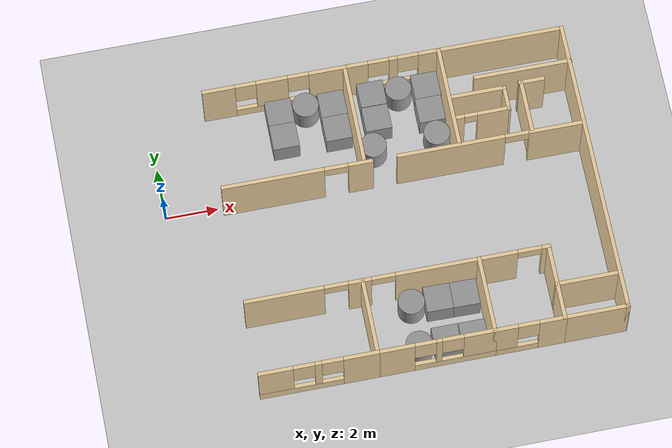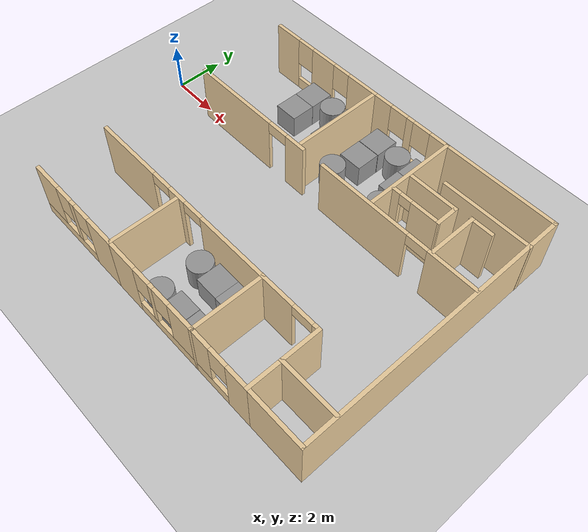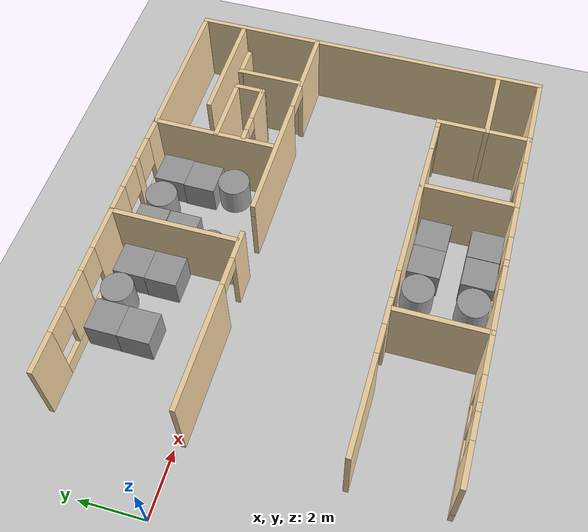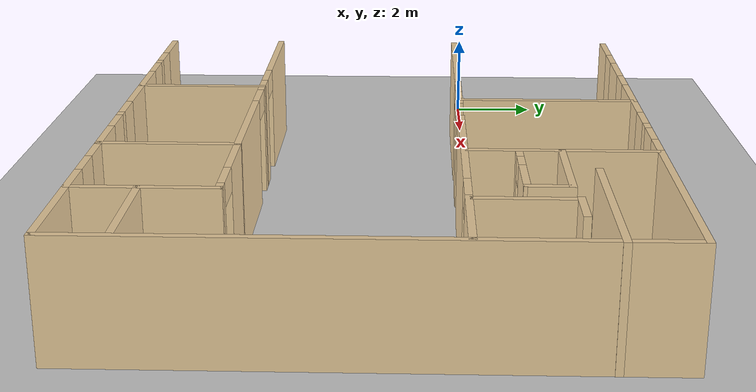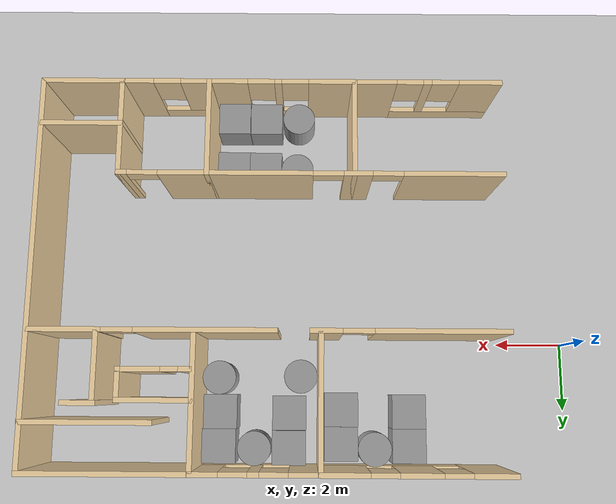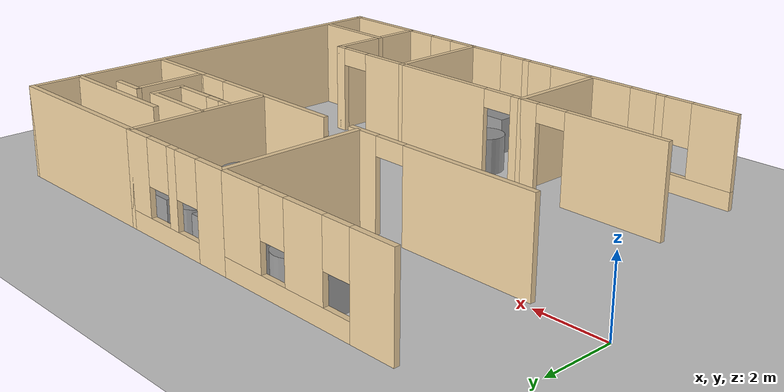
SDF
<sdf version="1.7">
 <world name="default">
  <model name="ground_plane">
   <static>1</static>
   <link name="link">
    <collision name="collision">
     <geometry><plane><normal>0 0 1</normal><size>100 100</size></plane></geometry>
     <surface>
      <contact><collide_bitmask>65535</collide_bitmask></contact>
      <friction><ode><mu>100</mu><mu2>50</mu2></ode></friction>
     </surface>
    </collision>
    <visual name="visual">
     <cast_shadows>0</cast_shadows>
     <geometry><plane><normal>0 0 1</normal><size>100 100</size></plane></geometry>
     <material>
      <script><uri>file://media/materials/scripts/gazebo.material</uri><name>Gazebo/Grey</name></script>
     </material>
    </visual>
   </link>
  </model>
  <model name="Health_2">
   <pose>1.45683 -1.97013 0 0 -0 0</pose>
   <link name="Wall_145">
    <collision name="Wall_145_Collision">
     <geometry><box><size>3 0.15 2.5</size></box></geometry>
     <pose>0 0 1.25 0 -0 0</pose>
    </collision>
    <visual name="Wall_145_Visual">
     <pose>0 0 1.25 0 -0 0</pose>
     <geometry><box><size>3 0.15 2.5</size></box></geometry>
     <material>
      <script><uri>file://media/materials/scripts/gazebo.material</uri><name>Gazebo/Grey</name></script>
      <ambient>0.921569 0.807843 0.615686 1</ambient>
     </material>
     <meta><layer>0</layer></meta>
    </visual>
    <pose>9.48077 -4.275 0 0 -0 -1.5708</pose>
   </link>
   <link name="Wall_164">
    <pose>3.43264 5.7 0 0 -0 0</pose>
    <visual name="Wall_164_Visual_0">
     <pose>-2.12455 0 1.25 0 -0 0</pose>
     <geometry><box><size>1.25091 0.15 2.5</size></box></geometry>
     <material>
      <script><uri>file://media/materials/scripts/gazebo.material</uri><name>Gazebo/Grey</name></script>
      <ambient>0.921569 0.807843 0.615686 1</ambient>
     </material>
     <meta><layer>0</layer></meta>
    </visual>
    <collision name="Wall_164_Collision_0">
     <geometry><box><size>1.25091 0.15 2.5</size></box></geometry>
     <pose>-2.12455 0 1.25 0 -0 0</pose>
    </collision>
    <visual name="Wall_164_Visual_1">
     <pose>0.625454 0 0.25 0 -0 0</pose>
     <geometry><box><size>4.24909 0.15 0.5</size></box></geometry>
     <material>
      <script><uri>file://media/materials/scripts/gazebo.material</uri><name>Gazebo/Grey</name></script>
      <ambient>0.921569 0.807843 0.615686 1</ambient>
     </material>
     <meta><layer>0</layer></meta>
    </visual>
    <collision name="Wall_164_Collision_1">
     <geometry><box><size>4.24909 0.15 0.5</size></box></geometry>
     <pose>0.625454 0 0.25 0 -0 0</pose>
    </collision>
    <visual name="Wall_164_Visual_2">
     <pose>-0.096496 0 1.5 0 -0 0</pose>
     <geometry><box><size>1.20519 0.15 2</size></box></geometry>
     <material>
      <script><uri>file://media/materials/scripts/gazebo.material</uri><name>Gazebo/Grey</name></script>
      <ambient>0.921569 0.807843 0.615686 1</ambient>
     </material>
     <meta><layer>0</layer></meta>
    </visual>
    <collision name="Wall_164_Collision_2">
     <geometry><box><size>1.20519 0.15 2</size></box></geometry>
     <pose>-0.096496 0 1.5 0 -0 0</pose>
    </collision>
    <visual name="Wall_164_Visual_3">
     <pose>2.02805 0 1.5 0 -0 0</pose>
     <geometry><box><size>1.4439 0.15 2</size></box></geometry>
     <material>
      <script><uri>file://media/materials/scripts/gazebo.material</uri><name>Gazebo/Grey</name></script>
      <ambient>0.921569 0.807843 0.615686 1</ambient>
     </material>
     <meta><layer>0</layer></meta>
    </visual>
    <collision name="Wall_164_Collision_3">
     <geometry><box><size>1.4439 0.15 2</size></box></geometry>
     <pose>2.02805 0 1.5 0 -0 0</pose>
    </collision>
    <visual name="Wall_164_Visual_4">
     <pose>-1.09909 0 1.9 0 -0 0</pose>
     <geometry><box><size>0.8 0.15 1.2</size></box></geometry>
     <material>
      <script><uri>file://media/materials/scripts/gazebo.material</uri><name>Gazebo/Grey</name></script>
      <ambient>0.921569 0.807843 0.615686 1</ambient>
     </material>
     <meta><layer>0</layer></meta>
    </visual>
    <collision name="Wall_164_Collision_4">
     <geometry><box><size>0.8 0.15 1.2</size></box></geometry>
     <pose>-1.09909 0 1.9 0 -0 0</pose>
    </collision>
    <visual name="Wall_164_Visual_5">
     <pose>0.906098 0 1.9 0 -0 0</pose>
     <geometry><box><size>0.8 0.15 1.2</size></box></geometry>
     <material>
      <script><uri>file://media/materials/scripts/gazebo.material</uri><name>Gazebo/Grey</name></script>
      <ambient>0.921569 0.807843 0.615686 1</ambient>
     </material>
     <meta><layer>0</layer></meta>
    </visual>
    <collision name="Wall_164_Collision_5">
     <geometry><box><size>0.8 0.15 1.2</size></box></geometry>
     <pose>0.906098 0 1.9 0 -0 0</pose>
    </collision>
   </link>
   <link name="Wall_165">
    <collision name="Wall_165_Collision">
     <geometry><box><size>4 0.15 2.5</size></box></geometry>
     <pose>0 0 1.25 0 -0 0</pose>
    </collision>
    <visual name="Wall_165_Visual">
     <pose>0 0 1.25 0 -0 0</pose>
     <geometry><box><size>4 0.15 2.5</size></box></geometry>
     <material>
      <script><uri>file://media/materials/scripts/gazebo.material</uri><name>Gazebo/Grey</name></script>
      <ambient>0.921569 0.807843 0.615686 1</ambient>
     </material>
     <meta><layer>0</layer></meta>
    </visual>
    <pose>6.10764 3.775 0 0 -0 -1.5708</pose>
   </link>
   <link name="Wall_190">
    <pose>7.90764 5.7 0 0 -0 0</pose>
    <visual name="Wall_190_Visual_0">
     <pose>-1.39167 0 1.25 0 -0 0</pose>
     <geometry><box><size>0.966652 0.15 2.5</size></box></geometry>
     <material>
      <script><uri>file://media/materials/scripts/gazebo.material</uri><name>Gazebo/Grey</name></script>
      <ambient>0.921569 0.807843 0.615686 1</ambient>
     </material>
     <meta><layer>0</layer></meta>
    </visual>
    <collision name="Wall_190_Collision_0">
     <geometry><box><size>0.966652 0.15 2.5</size></box></geometry>
     <pose>-1.39167 0 1.25 0 -0 0</pose>
    </collision>
    <visual name="Wall_190_Visual_1">
     <pose>0.483326 0 0.25 0 -0 0</pose>
     <geometry><box><size>2.78335 0.15 0.5</size></box></geometry>
     <material>
      <script><uri>file://media/materials/scripts/gazebo.material</uri><name>Gazebo/Grey</name></script>
      <ambient>0.921569 0.807843 0.615686 1</ambient>
     </material>
     <meta><layer>0</layer></meta>
    </visual>
    <collision name="Wall_190_Collision_1">
     <geometry><box><size>2.78335 0.15 0.5</size></box></geometry>
     <pose>0.483326 0 0.25 0 -0 0</pose>
    </collision>
    <visual name="Wall_190_Visual_2">
     <pose>0.054512 0 1.5 0 -0 0</pose>
     <geometry><box><size>0.32572 0.15 2</size></box></geometry>
     <material>
      <script><uri>file://media/materials/scripts/gazebo.material</uri><name>Gazebo/Grey</name></script>
      <ambient>0.921569 0.807843 0.615686 1</ambient>
     </material>
     <meta><layer>0</layer></meta>
    </visual>
    <collision name="Wall_190_Collision_2">
     <geometry><box><size>0.32572 0.15 2</size></box></geometry>
     <pose>0.054512 0 1.5 0 -0 0</pose>
    </collision>
    <visual name="Wall_190_Visual_3">
     <pose>1.44619 0 1.5 0 -0 0</pose>
     <geometry><box><size>0.857628 0.15 2</size></box></geometry>
     <material>
      <script><uri>file://media/materials/scripts/gazebo.material</uri><name>Gazebo/Grey</name></script>
      <ambient>0.921569 0.807843 0.615686 1</ambient>
     </material>
     <meta><layer>0</layer></meta>
    </visual>
    <collision name="Wall_190_Collision_3">
     <geometry><box><size>0.857628 0.15 2</size></box></geometry>
     <pose>1.44619 0 1.5 0 -0 0</pose>
    </collision>
    <visual name="Wall_190_Visual_4">
     <pose>-0.508348 0 1.9 0 -0 0</pose>
     <geometry><box><size>0.8 0.15 1.2</size></box></geometry>
     <material>
      <script><uri>file://media/materials/scripts/gazebo.material</uri><name>Gazebo/Grey</name></script>
      <ambient>0.921569 0.807843 0.615686 1</ambient>
     </material>
     <meta><layer>0</layer></meta>
    </visual>
    <collision name="Wall_190_Collision_4">
     <geometry><box><size>0.8 0.15 1.2</size></box></geometry>
     <pose>-0.508348 0 1.9 0 -0 0</pose>
    </collision>
    <visual name="Wall_190_Visual_5">
     <pose>0.617372 0 1.9 0 -0 0</pose>
     <geometry><box><size>0.8 0.15 1.2</size></box></geometry>
     <material>
      <script><uri>file://media/materials/scripts/gazebo.material</uri><name>Gazebo/Grey</name></script>
      <ambient>0.921569 0.807843 0.615686 1</ambient>
     </material>
     <meta><layer>0</layer></meta>
    </visual>
    <collision name="Wall_190_Collision_5">
     <geometry><box><size>0.8 0.15 1.2</size></box></geometry>
     <pose>0.617372 0 1.9 0 -0 0</pose>
    </collision>
   </link>
   <link name="Wall_191">
    <collision name="Wall_191_Collision">
     <geometry><box><size>4 0.15 2.5</size></box></geometry>
     <pose>0 0 1.25 0 -0 0</pose>
    </collision>
    <visual name="Wall_191_Visual">
     <pose>0 0 1.25 0 -0 0</pose>
     <geometry><box><size>4 0.15 2.5</size></box></geometry>
     <material>
      <script><uri>file://media/materials/scripts/gazebo.material</uri><name>Gazebo/Grey</name></script>
      <ambient>0.921569 0.807843 0.615686 1</ambient>
     </material>
     <meta><layer>0</layer></meta>
    </visual>
    <pose>9.70764 3.775 0 0 -0 -1.5708</pose>
   </link>
   <link name="Wall_203">
    <collision name="Wall_203_Collision">
     <geometry><box><size>11.55 0.15 2.5</size></box></geometry>
     <pose>0 0 1.25 0 -0 0</pose>
    </collision>
    <visual name="Wall_203_Visual">
     <pose>0 0 1.25 0 -0 0</pose>
     <geometry><box><size>11.55 0.15 2.5</size></box></geometry>
     <material>
      <script><uri>file://media/materials/scripts/gazebo.material</uri><name>Gazebo/Grey</name></script>
      <ambient>0.921569 0.807843 0.615686 1</ambient>
     </material>
     <meta><layer>0</layer></meta>
    </visual>
    <pose>14.4308 -0 0 0 -0 1.5708</pose>
   </link>
   <link name="Wall_206">
    <collision name="Wall_206_Collision">
     <geometry><box><size>4.87313 0.15 2.5</size></box></geometry>
     <pose>0 0 1.25 0 -0 0</pose>
    </collision>
    <visual name="Wall_206_Visual">
     <pose>0 0 1.25 0 -0 0</pose>
     <geometry><box><size>4.87313 0.15 2.5</size></box></geometry>
     <material>
      <script><uri>file://media/materials/scripts/gazebo.material</uri><name>Gazebo/Grey</name></script>
      <ambient>0.921569 0.807843 0.615686 1</ambient>
     </material>
     <meta><layer>0</layer></meta>
    </visual>
    <pose>12.0692 5.7 0 0 -0 0</pose>
   </link>
   <link name="Wall_222">
    <collision name="Wall_222_Collision">
     <geometry><box><size>2.5 0.15 2.5</size></box></geometry>
     <pose>0 0 1.25 0 -0 0</pose>
    </collision>
    <visual name="Wall_222_Visual">
     <pose>0 0 1.25 0 -0 0</pose>
     <geometry><box><size>2.5 0.15 2.5</size></box></geometry>
     <material>
      <script><uri>file://media/materials/scripts/gazebo.material</uri><name>Gazebo/Grey</name></script>
      <ambient>0.921569 0.807843 0.615686 1</ambient>
     </material>
     <meta><layer>0</layer></meta>
    </visual>
    <pose>13.2531 -4.36608 0 0 -0 0</pose>
   </link>
   <link name="Wall_230">
    <pose>6.43077 -2.85 0 0 -0 0</pose>
    <visual name="Wall_230_Visual_0">
     <pose>-4.22798 0 1.25 0 -0 0</pose>
     <geometry><box><size>2.99403 0.15 2.5</size></box></geometry>
     <material>
      <script><uri>file://media/materials/scripts/gazebo.material</uri><name>Gazebo/Grey</name></script>
      <ambient>0.921569 0.807843 0.615686 1</ambient>
     </material>
     <meta><layer>0</layer></meta>
    </visual>
    <collision name="Wall_230_Collision_0">
     <geometry><box><size>2.99403 0.15 2.5</size></box></geometry>
     <pose>-4.22798 0 1.25 0 -0 0</pose>
    </collision>
    <visual name="Wall_230_Visual_1">
     <pose>-1.40349 0 1.25 0 -0 0</pose>
     <geometry><box><size>0.854958 0.15 2.5</size></box></geometry>
     <material>
      <script><uri>file://media/materials/scripts/gazebo.material</uri><name>Gazebo/Grey</name></script>
      <ambient>0.921569 0.807843 0.615686 1</ambient>
     </material>
     <meta><layer>0</layer></meta>
    </visual>
    <collision name="Wall_230_Collision_1">
     <geometry><box><size>0.854958 0.15 2.5</size></box></geometry>
     <pose>-1.40349 0 1.25 0 -0 0</pose>
    </collision>
    <visual name="Wall_230_Visual_2">
     <pose>2.20944 0 1.25 0 -0 0</pose>
     <geometry><box><size>4.57089 0.15 2.5</size></box></geometry>
     <material>
      <script><uri>file://media/materials/scripts/gazebo.material</uri><name>Gazebo/Grey</name></script>
      <ambient>0.921569 0.807843 0.615686 1</ambient>
     </material>
     <meta><layer>0</layer></meta>
    </visual>
    <collision name="Wall_230_Collision_2">
     <geometry><box><size>4.57089 0.15 2.5</size></box></geometry>
     <pose>2.20944 0 1.25 0 -0 0</pose>
    </collision>
    <visual name="Wall_230_Visual_3">
     <pose>5.55994 0 1.25 0 -0 0</pose>
     <geometry><box><size>0.330116 0.15 2.5</size></box></geometry>
     <material>
      <script><uri>file://media/materials/scripts/gazebo.material</uri><name>Gazebo/Grey</name></script>
      <ambient>0.921569 0.807843 0.615686 1</ambient>
     </material>
     <meta><layer>0</layer></meta>
    </visual>
    <collision name="Wall_230_Collision_3">
     <geometry><box><size>0.330116 0.15 2.5</size></box></geometry>
     <pose>5.55994 0 1.25 0 -0 0</pose>
    </collision>
    <visual name="Wall_230_Visual_4">
     <pose>-2.28097 0 2.25 0 -0 0</pose>
     <geometry><box><size>0.9 0.15 0.5</size></box></geometry>
     <material>
      <script><uri>file://media/materials/scripts/gazebo.material</uri><name>Gazebo/Grey</name></script>
      <ambient>0.921569 0.807843 0.615686 1</ambient>
     </material>
     <meta><layer>0</layer></meta>
    </visual>
    <collision name="Wall_230_Collision_4">
     <geometry><box><size>0.9 0.15 0.5</size></box></geometry>
     <pose>-2.28097 0 2.25 0 -0 0</pose>
    </collision>
    <visual name="Wall_230_Visual_5">
     <pose>-0.526008 0 2.25 0 -0 0</pose>
     <geometry><box><size>0.9 0.15 0.5</size></box></geometry>
     <material>
      <script><uri>file://media/materials/scripts/gazebo.material</uri><name>Gazebo/Grey</name></script>
      <ambient>0.921569 0.807843 0.615686 1</ambient>
     </material>
     <meta><layer>0</layer></meta>
    </visual>
    <collision name="Wall_230_Collision_5">
     <geometry><box><size>0.9 0.15 0.5</size></box></geometry>
     <pose>-0.526008 0 2.25 0 -0 0</pose>
    </collision>
    <visual name="Wall_230_Visual_6">
     <pose>4.94488 0 2.25 0 -0 0</pose>
     <geometry><box><size>0.9 0.15 0.5</size></box></geometry>
     <material>
      <script><uri>file://media/materials/scripts/gazebo.material</uri><name>Gazebo/Grey</name></script>
      <ambient>0.921569 0.807843 0.615686 1</ambient>
     </material>
     <meta><layer>0</layer></meta>
    </visual>
    <collision name="Wall_230_Collision_6">
     <geometry><box><size>0.9 0.15 0.5</size></box></geometry>
     <pose>4.94488 0 2.25 0 -0 0</pose>
    </collision>
   </link>
   <link name="Wall_247">
    <pose>7.57961 1.75857 0 0 -0 3.14159</pose>
    <visual name="Wall_247_Visual_0">
     <pose>-5.81258 0 1.25 0 -0 0</pose>
     <geometry><box><size>2.12484 0.15 2.5</size></box></geometry>
     <material>
      <script><uri>file://media/materials/scripts/gazebo.material</uri><name>Gazebo/Grey</name></script>
      <ambient>0.921569 0.807843 0.615686 1</ambient>
     </material>
     <meta><layer>0</layer></meta>
    </visual>
    <collision name="Wall_247_Collision_0">
     <geometry><box><size>2.12484 0.15 2.5</size></box></geometry>
     <pose>-5.81258 0 1.25 0 -0 0</pose>
    </collision>
    <visual name="Wall_247_Visual_1">
     <pose>-1.79974 0 1.25 0 -0 0</pose>
     <geometry><box><size>4.10084 0.15 2.5</size></box></geometry>
     <material>
      <script><uri>file://media/materials/scripts/gazebo.material</uri><name>Gazebo/Grey</name></script>
      <ambient>0.921569 0.807843 0.615686 1</ambient>
     </material>
     <meta><layer>0</layer></meta>
    </visual>
    <collision name="Wall_247_Collision_1">
     <geometry><box><size>4.10084 0.15 2.5</size></box></geometry>
     <pose>-1.79974 0 1.25 0 -0 0</pose>
    </collision>
    <visual name="Wall_247_Visual_2">
     <pose>1.62183 0 1.25 0 -0 0</pose>
     <geometry><box><size>0.942288 0.15 2.5</size></box></geometry>
     <material>
      <script><uri>file://media/materials/scripts/gazebo.material</uri><name>Gazebo/Grey</name></script>
      <ambient>0.921569 0.807843 0.615686 1</ambient>
     </material>
     <meta><layer>0</layer></meta>
    </visual>
    <collision name="Wall_247_Collision_2">
     <geometry><box><size>0.942288 0.15 2.5</size></box></geometry>
     <pose>1.62183 0 1.25 0 -0 0</pose>
    </collision>
    <visual name="Wall_247_Visual_3">
     <pose>4.93398 0 1.25 0 -0 0</pose>
     <geometry><box><size>3.88203 0.15 2.5</size></box></geometry>
     <material>
      <script><uri>file://media/materials/scripts/gazebo.material</uri><name>Gazebo/Grey</name></script>
      <ambient>0.921569 0.807843 0.615686 1</ambient>
     </material>
     <meta><layer>0</layer></meta>
    </visual>
    <collision name="Wall_247_Collision_3">
     <geometry><box><size>3.88203 0.15 2.5</size></box></geometry>
     <pose>4.93398 0 1.25 0 -0 0</pose>
    </collision>
    <visual name="Wall_247_Visual_4">
     <pose>-4.30016 0 2.25 0 -0 0</pose>
     <geometry><box><size>0.9 0.15 0.5</size></box></geometry>
     <material>
      <script><uri>file://media/materials/scripts/gazebo.material</uri><name>Gazebo/Grey</name></script>
      <ambient>0.921569 0.807843 0.615686 1</ambient>
     </material>
     <meta><layer>0</layer></meta>
    </visual>
    <collision name="Wall_247_Collision_4">
     <geometry><box><size>0.9 0.15 0.5</size></box></geometry>
     <pose>-4.30016 0 2.25 0 -0 0</pose>
    </collision>
    <visual name="Wall_247_Visual_5">
     <pose>0.250682 0 2.25 0 -0 0</pose>
     <geometry><box><size>0 0.15 0.5</size></box></geometry>
     <material>
      <script><uri>file://media/materials/scripts/gazebo.material</uri><name>Gazebo/Grey</name></script>
      <ambient>0.921569 0.807843 0.615686 1</ambient>
     </material>
     <meta><layer>0</layer></meta>
    </visual>
    <collision name="Wall_247_Collision_5">
     <geometry><box><size>0 0.15 0.5</size></box></geometry>
     <pose>0.250682 0 2.25 0 -0 0</pose>
    </collision>
    <visual name="Wall_247_Visual_6">
     <pose>2.54297 0 2.25 0 -0 0</pose>
     <geometry><box><size>0.9 0.15 0.5</size></box></geometry>
     <material>
      <script><uri>file://media/materials/scripts/gazebo.material</uri><name>Gazebo/Grey</name></script>
      <ambient>0.921569 0.807843 0.615686 1</ambient>
     </material>
     <meta><layer>0</layer></meta>
    </visual>
    <collision name="Wall_247_Collision_6">
     <geometry><box><size>0.9 0.15 0.5</size></box></geometry>
     <pose>2.54297 0 2.25 0 -0 0</pose>
    </collision>
   </link>
   <link name="Wall_249">
    <collision name="Wall_249_Collision">
     <geometry><box><size>3.75 0.15 2.5</size></box></geometry>
     <pose>0 0 1.25 0 -0 0</pose>
    </collision>
    <visual name="Wall_249_Visual">
     <pose>0 0 1.25 0 -0 0</pose>
     <geometry><box><size>3.75 0.15 2.5</size></box></geometry>
     <material>
      <script><uri>file://media/materials/scripts/gazebo.material</uri><name>Gazebo/Grey</name></script>
      <ambient>0.921569 0.807843 0.615686 1</ambient>
     </material>
     <meta><layer>0</layer></meta>
    </visual>
    <pose>12.6424 4.32545 0 0 -0 0</pose>
   </link>
   <link name="Wall_251">
    <collision name="Wall_251_Collision">
     <geometry><box><size>2.1968 0.15 2.5</size></box></geometry>
     <pose>0 0 1.25 0 -0 0</pose>
    </collision>
    <visual name="Wall_251_Visual">
     <pose>0 0 1.25 0 -0 0</pose>
     <geometry><box><size>2.1968 0.15 2.5</size></box></geometry>
     <material>
      <script><uri>file://media/materials/scripts/gazebo.material</uri><name>Gazebo/Grey</name></script>
      <ambient>0.921569 0.807843 0.615686 1</ambient>
     </material>
     <meta><layer>0</layer></meta>
    </visual>
    <pose>10.7752 3.71364 0 0 -0 0</pose>
   </link>
   <link name="Wall_252">
    <collision name="Wall_252_Collision">
     <geometry><box><size>1 0.15 2.5</size></box></geometry>
     <pose>0 0 1.25 0 -0 0</pose>
    </collision>
    <visual name="Wall_252_Visual">
     <pose>0 0 1.25 0 -0 0</pose>
     <geometry><box><size>1 0.15 2.5</size></box></geometry>
     <material>
      <script><uri>file://media/materials/scripts/gazebo.material</uri><name>Gazebo/Grey</name></script>
      <ambient>0.921569 0.807843 0.615686 1</ambient>
     </material>
     <meta><layer>0</layer></meta>
    </visual>
    <pose>11.7986 3.28864 0 0 -0 -1.5708</pose>
   </link>
   <link name="Wall_253">
    <pose>10.8018 2.85834 0 0 -0 -3.13628</pose>
    <visual name="Wall_253_Visual_0">
     <pose>-0.440281 0 1.25 0 -0 0</pose>
     <geometry><box><size>1.26307 0.15 2.5</size></box></geometry>
     <material>
      <script><uri>file://media/materials/scripts/gazebo.material</uri><name>Gazebo/Grey</name></script>
      <ambient>0.921569 0.807843 0.615686 1</ambient>
     </material>
     <meta><layer>0</layer></meta>
    </visual>
    <collision name="Wall_253_Collision_0">
     <geometry><box><size>1.26307 0.15 2.5</size></box></geometry>
     <pose>-0.440281 0 1.25 0 -0 0</pose>
    </collision>
    <visual name="Wall_253_Visual_1">
     <pose>0.881533 0 1.25 0 -0 0</pose>
     <geometry><box><size>0.380561 0.15 2.5</size></box></geometry>
     <material>
      <script><uri>file://media/materials/scripts/gazebo.material</uri><name>Gazebo/Grey</name></script>
      <ambient>0.921569 0.807843 0.615686 1</ambient>
     </material>
     <meta><layer>0</layer></meta>
    </visual>
    <collision name="Wall_253_Collision_1">
     <geometry><box><size>0.380561 0.15 2.5</size></box></geometry>
     <pose>0.881533 0 1.25 0 -0 0</pose>
    </collision>
    <visual name="Wall_253_Visual_2">
     <pose>0.441252 0 2.25 0 -0 0</pose>
     <geometry><box><size>0.5 0.15 0.5</size></box></geometry>
     <material>
      <script><uri>file://media/materials/scripts/gazebo.material</uri><name>Gazebo/Grey</name></script>
      <ambient>0.921569 0.807843 0.615686 1</ambient>
     </material>
     <meta><layer>0</layer></meta>
    </visual>
    <collision name="Wall_253_Collision_2">
     <geometry><box><size>0.5 0.15 0.5</size></box></geometry>
     <pose>0.441252 0 2.25 0 -0 0</pose>
    </collision>
   </link>
   <link name="Wall_257">
    <collision name="Wall_257_Collision">
     <geometry><box><size>2.0958 0.15 2.5</size></box></geometry>
     <pose>0 0 1.25 0 -0 0</pose>
    </collision>
    <visual name="Wall_257_Visual">
     <pose>0 0 1.25 0 -0 0</pose>
     <geometry><box><size>2.0958 0.15 2.5</size></box></geometry>
     <material>
      <script><uri>file://media/materials/scripts/gazebo.material</uri><name>Gazebo/Grey</name></script>
      <ambient>0.921569 0.807843 0.615686 1</ambient>
     </material>
     <meta><layer>0</layer></meta>
    </visual>
    <pose>12.465 2.82453 0 0 -0 1.5708</pose>
   </link>
   <link name="Wall_258">
    <collision name="Wall_258_Collision">
     <geometry><box><size>1 0.15 2.5</size></box></geometry>
     <pose>0 0 1.25 0 -0 0</pose>
    </collision>
    <visual name="Wall_258_Visual">
     <pose>0 0 1.25 0 -0 0</pose>
     <geometry><box><size>1 0.15 2.5</size></box></geometry>
     <material>
      <script><uri>file://media/materials/scripts/gazebo.material</uri><name>Gazebo/Grey</name></script>
      <ambient>0.921569 0.807843 0.615686 1</ambient>
     </material>
     <meta><layer>0</layer></meta>
    </visual>
    <pose>12.8634 3.79743 0 0 -0 0</pose>
   </link>
   <link name="Wall_53">
    <collision name="Wall_53_Collision">
     <geometry><box><size>3 0.15 2.5</size></box></geometry>
     <pose>0 0 1.25 0 -0 0</pose>
    </collision>
    <visual name="Wall_53_Visual">
     <pose>0 0 1.25 0 -0 0</pose>
     <geometry><box><size>3 0.15 2.5</size></box></geometry>
     <material>
      <script><uri>file://media/materials/scripts/gazebo.material</uri><name>Gazebo/Grey</name></script>
      <ambient>0.921569 0.807843 0.615686 1</ambient>
     </material>
     <meta><layer>0</layer></meta>
    </visual>
    <pose>5.13077 -4.275 0 0 -0 -1.5708</pose>
   </link>
   <link name="Wall_54">
    <pose>2.95577 -5.7 0 0 -0 3.14159</pose>
    <visual name="Wall_54_Visual_0">
     <pose>-1.57675 0 1.25 0 -0 0</pose>
     <geometry><box><size>1.3465 0.15 2.5</size></box></geometry>
     <material>
      <script><uri>file://media/materials/scripts/gazebo.material</uri><name>Gazebo/Grey</name></script>
      <ambient>0.921569 0.807843 0.615686 1</ambient>
     </material>
     <meta><layer>0</layer></meta>
    </visual>
    <collision name="Wall_54_Collision_0">
     <geometry><box><size>1.3465 0.15 2.5</size></box></geometry>
     <pose>-1.57675 0 1.25 0 -0 0</pose>
    </collision>
    <visual name="Wall_54_Visual_1">
     <pose>0.673251 0 0.25 0 -0 0</pose>
     <geometry><box><size>3.1535 0.15 0.5</size></box></geometry>
     <material>
      <script><uri>file://media/materials/scripts/gazebo.material</uri><name>Gazebo/Grey</name></script>
      <ambient>0.921569 0.807843 0.615686 1</ambient>
     </material>
     <meta><layer>0</layer></meta>
    </visual>
    <collision name="Wall_54_Collision_1">
     <geometry><box><size>3.1535 0.15 0.5</size></box></geometry>
     <pose>0.673251 0 0.25 0 -0 0</pose>
    </collision>
    <visual name="Wall_54_Visual_2">
     <pose>0.024183 0 1.5 0 -0 0</pose>
     <geometry><box><size>0.255363 0.15 2</size></box></geometry>
     <material>
      <script><uri>file://media/materials/scripts/gazebo.material</uri><name>Gazebo/Grey</name></script>
      <ambient>0.921569 0.807843 0.615686 1</ambient>
     </material>
     <meta><layer>0</layer></meta>
    </visual>
    <collision name="Wall_54_Collision_2">
     <geometry><box><size>0.255363 0.15 2</size></box></geometry>
     <pose>0.024183 0 1.5 0 -0 0</pose>
    </collision>
    <visual name="Wall_54_Visual_3">
     <pose>1.60093 0 1.5 0 -0 0</pose>
     <geometry><box><size>1.29814 0.15 2</size></box></geometry>
     <material>
      <script><uri>file://media/materials/scripts/gazebo.material</uri><name>Gazebo/Grey</name></script>
      <ambient>0.921569 0.807843 0.615686 1</ambient>
     </material>
     <meta><layer>0</layer></meta>
    </visual>
    <collision name="Wall_54_Collision_3">
     <geometry><box><size>1.29814 0.15 2</size></box></geometry>
     <pose>1.60093 0 1.5 0 -0 0</pose>
    </collision>
    <visual name="Wall_54_Visual_4">
     <pose>-0.503499 0 1.9 0 -0 0</pose>
     <geometry><box><size>0.8 0.15 1.2</size></box></geometry>
     <material>
      <script><uri>file://media/materials/scripts/gazebo.material</uri><name>Gazebo/Grey</name></script>
      <ambient>0.921569 0.807843 0.615686 1</ambient>
     </material>
     <meta><layer>0</layer></meta>
    </visual>
    <collision name="Wall_54_Collision_4">
     <geometry><box><size>0.8 0.15 1.2</size></box></geometry>
     <pose>-0.503499 0 1.9 0 -0 0</pose>
    </collision>
    <visual name="Wall_54_Visual_5">
     <pose>0.551864 0 1.9 0 -0 0</pose>
     <geometry><box><size>0.8 0.15 1.2</size></box></geometry>
     <material>
      <script><uri>file://media/materials/scripts/gazebo.material</uri><name>Gazebo/Grey</name></script>
      <ambient>0.921569 0.807843 0.615686 1</ambient>
     </material>
     <meta><layer>0</layer></meta>
    </visual>
    <collision name="Wall_54_Collision_5">
     <geometry><box><size>0.8 0.15 1.2</size></box></geometry>
     <pose>0.551864 0 1.9 0 -0 0</pose>
    </collision>
   </link>
   <link name="Wall_57">
    <pose>7.30577 -5.7 0 0 -0 0</pose>
    <visual name="Wall_57_Visual_0">
     <pose>-1.52449 0 1.25 0 -0 0</pose>
     <geometry><box><size>1.45102 0.15 2.5</size></box></geometry>
     <material>
      <script><uri>file://media/materials/scripts/gazebo.material</uri><name>Gazebo/Grey</name></script>
      <ambient>0.921569 0.807843 0.615686 1</ambient>
     </material>
     <meta><layer>0</layer></meta>
    </visual>
    <collision name="Wall_57_Collision_0">
     <geometry><box><size>1.45102 0.15 2.5</size></box></geometry>
     <pose>-1.52449 0 1.25 0 -0 0</pose>
    </collision>
    <visual name="Wall_57_Visual_1">
     <pose>0.725508 0 0.25 0 -0 0</pose>
     <geometry><box><size>3.04898 0.15 0.5</size></box></geometry>
     <material>
      <script><uri>file://media/materials/scripts/gazebo.material</uri><name>Gazebo/Grey</name></script>
      <ambient>0.921569 0.807843 0.615686 1</ambient>
     </material>
     <meta><layer>0</layer></meta>
    </visual>
    <collision name="Wall_57_Collision_1">
     <geometry><box><size>3.04898 0.15 0.5</size></box></geometry>
     <pose>0.725508 0 0.25 0 -0 0</pose>
    </collision>
    <visual name="Wall_57_Visual_2">
     <pose>0.111109 0 1.5 0 -0 0</pose>
     <geometry><box><size>0.220185 0.15 2</size></box></geometry>
     <material>
      <script><uri>file://media/materials/scripts/gazebo.material</uri><name>Gazebo/Grey</name></script>
      <ambient>0.921569 0.807843 0.615686 1</ambient>
     </material>
     <meta><layer>0</layer></meta>
    </visual>
    <collision name="Wall_57_Collision_2">
     <geometry><box><size>0.220185 0.15 2</size></box></geometry>
     <pose>0.111109 0 1.5 0 -0 0</pose>
    </collision>
    <visual name="Wall_57_Visual_3">
     <pose>1.6356 0 1.5 0 -0 0</pose>
     <geometry><box><size>1.2288 0.15 2</size></box></geometry>
     <material>
      <script><uri>file://media/materials/scripts/gazebo.material</uri><name>Gazebo/Grey</name></script>
      <ambient>0.921569 0.807843 0.615686 1</ambient>
     </material>
     <meta><layer>0</layer></meta>
    </visual>
    <collision name="Wall_57_Collision_3">
     <geometry><box><size>1.2288 0.15 2</size></box></geometry>
     <pose>1.6356 0 1.5 0 -0 0</pose>
    </collision>
    <visual name="Wall_57_Visual_4">
     <pose>-0.398983 0 1.9 0 -0 0</pose>
     <geometry><box><size>0.8 0.15 1.2</size></box></geometry>
     <material>
      <script><uri>file://media/materials/scripts/gazebo.material</uri><name>Gazebo/Grey</name></script>
      <ambient>0.921569 0.807843 0.615686 1</ambient>
     </material>
     <meta><layer>0</layer></meta>
    </visual>
    <collision name="Wall_57_Collision_4">
     <geometry><box><size>0.8 0.15 1.2</size></box></geometry>
     <pose>-0.398983 0 1.9 0 -0 0</pose>
    </collision>
    <visual name="Wall_57_Visual_5">
     <pose>0.621202 0 1.9 0 -0 0</pose>
     <geometry><box><size>0.8 0.15 1.2</size></box></geometry>
     <material>
      <script><uri>file://media/materials/scripts/gazebo.material</uri><name>Gazebo/Grey</name></script>
      <ambient>0.921569 0.807843 0.615686 1</ambient>
     </material>
     <meta><layer>0</layer></meta>
    </visual>
    <collision name="Wall_57_Collision_5">
     <geometry><box><size>0.8 0.15 1.2</size></box></geometry>
     <pose>0.621202 0 1.9 0 -0 0</pose>
    </collision>
   </link>
   <link name="Wall_64">
    <collision name="Wall_64_Collision">
     <geometry><box><size>3 0.15 2.5</size></box></geometry>
     <pose>0 0 1.25 0 -0 0</pose>
    </collision>
    <visual name="Wall_64_Visual">
     <pose>0 0 1.25 0 -0 0</pose>
     <geometry><box><size>3 0.15 2.5</size></box></geometry>
     <material>
      <script><uri>file://media/materials/scripts/gazebo.material</uri><name>Gazebo/Grey</name></script>
      <ambient>0.921569 0.807843 0.615686 1</ambient>
     </material>
     <meta><layer>0</layer></meta>
    </visual>
    <pose>12.0808 -4.275 0 0 -0 -1.5708</pose>
   </link>
   <link name="Wall_65">
    <pose>10.7808 -5.7 0 0 -0 3.14159</pose>
    <visual name="Wall_65_Visual_0">
     <pose>-0.867751 0 1.25 0 -0 0</pose>
     <geometry><box><size>1.0145 0.15 2.5</size></box></geometry>
     <material>
      <script><uri>file://media/materials/scripts/gazebo.material</uri><name>Gazebo/Grey</name></script>
      <ambient>0.921569 0.807843 0.615686 1</ambient>
     </material>
     <meta><layer>0</layer></meta>
    </visual>
    <collision name="Wall_65_Collision_0">
     <geometry><box><size>1.0145 0.15 2.5</size></box></geometry>
     <pose>-0.867751 0 1.25 0 -0 0</pose>
    </collision>
    <visual name="Wall_65_Visual_1">
     <pose>0.507249 0 0.25 0 -0 0</pose>
     <geometry><box><size>1.7355 0.15 0.5</size></box></geometry>
     <material>
      <script><uri>file://media/materials/scripts/gazebo.material</uri><name>Gazebo/Grey</name></script>
      <ambient>0.921569 0.807843 0.615686 1</ambient>
     </material>
     <meta><layer>0</layer></meta>
    </visual>
    <collision name="Wall_65_Collision_1">
     <geometry><box><size>1.7355 0.15 0.5</size></box></geometry>
     <pose>0.507249 0 0.25 0 -0 0</pose>
    </collision>
    <visual name="Wall_65_Visual_2">
     <pose>0.907249 0 1.5 0 -0 0</pose>
     <geometry><box><size>0.935503 0.15 2</size></box></geometry>
     <material>
      <script><uri>file://media/materials/scripts/gazebo.material</uri><name>Gazebo/Grey</name></script>
      <ambient>0.921569 0.807843 0.615686 1</ambient>
     </material>
     <meta><layer>0</layer></meta>
    </visual>
    <collision name="Wall_65_Collision_2">
     <geometry><box><size>0.935503 0.15 2</size></box></geometry>
     <pose>0.907249 0 1.5 0 -0 0</pose>
    </collision>
    <visual name="Wall_65_Visual_3">
     <pose>0.039497 0 1.9 0 -0 0</pose>
     <geometry><box><size>0.8 0.15 1.2</size></box></geometry>
     <material>
      <script><uri>file://media/materials/scripts/gazebo.material</uri><name>Gazebo/Grey</name></script>
      <ambient>0.921569 0.807843 0.615686 1</ambient>
     </material>
     <meta><layer>0</layer></meta>
    </visual>
    <collision name="Wall_65_Collision_3">
     <geometry><box><size>0.8 0.15 1.2</size></box></geometry>
     <pose>0.039497 0 1.9 0 -0 0</pose>
    </collision>
   </link>
   <link name="Wall_76">
    <collision name="Wall_76_Collision">
     <geometry><box><size>2.5 0.15 2.5</size></box></geometry>
     <pose>0 0 1.25 0 -0 0</pose>
    </collision>
    <visual name="Wall_76_Visual">
     <pose>0 0 1.25 0 -0 0</pose>
     <geometry><box><size>2.5 0.15 2.5</size></box></geometry>
     <material>
      <script><uri>file://media/materials/scripts/gazebo.material</uri><name>Gazebo/Grey</name></script>
      <ambient>0.921569 0.807843 0.615686 1</ambient>
     </material>
     <meta><layer>0</layer></meta>
    </visual>
    <pose>13.2558 -5.7 0 0 -0 0</pose>
   </link>
   <static>1</static>
  </model>
  <model name="unit_box_22">
   <pose>4.92662 3.05308 0.5 0 0 -5e-06</pose>
   <link name="link">
    <inertial>
     <mass>1</mass>
     <inertia>
      <ixx>0.166667</ixx>
      <ixy>0</ixy>
      <ixz>0</ixz>
      <iyy>0.166667</iyy>
      <iyz>0</iyz>
      <izz>0.166667</izz>
     </inertia>
    </inertial>
    <collision name="collision"><geometry><box><size>1 1 1</size></box></geometry></collision>
    <visual name="visual">
     <geometry><box><size>1 1 1</size></box></geometry>
     <material>
      <script><name>Gazebo/Grey</name><uri>file://media/materials/scripts/gazebo.material</uri></script>
     </material>
    </visual>
   </link>
  </model>
  <model name="unit_box_23">
   <pose>4.92358 2.05307 0.5 -0 -0 -5e-06</pose>
   <link name="link">
    <inertial>
     <mass>1</mass>
     <inertia>
      <ixx>0.166667</ixx>
      <ixy>0</ixy>
      <ixz>0</ixz>
      <iyy>0.166667</iyy>
      <iyz>0</iyz>
      <izz>0.166667</izz>
     </inertia>
    </inertial>
    <collision name="collision"><geometry><box><size>1 1 1</size></box></geometry></collision>
    <visual name="visual">
     <geometry><box><size>1 1 1</size></box></geometry>
     <material>
      <script><name>Gazebo/Grey</name><uri>file://media/materials/scripts/gazebo.material</uri></script>
     </material>
    </visual>
   </link>
  </model>
  <model name="unit_box_24">
   <pose>6.94186 3.00469 0.5 0 -0 0.004412</pose>
   <link name="link">
    <inertial>
     <mass>1</mass>
     <inertia>
      <ixx>0.166667</ixx>
      <ixy>0</ixy>
      <ixz>0</ixz>
      <iyy>0.166667</iyy>
      <iyz>0</iyz>
      <izz>0.166667</izz>
     </inertia>
    </inertial>
    <collision name="collision"><geometry><box><size>1 1 1</size></box></geometry></collision>
    <visual name="visual">
     <geometry><box><size>1 1 1</size></box></geometry>
     <material>
      <script><name>Gazebo/Grey</name><uri>file://media/materials/scripts/gazebo.material</uri></script>
     </material>
    </visual>
   </link>
  </model>
  <model name="unit_box_25">
   <pose>6.9346 2.00461 0.5 0 -0 0.004414</pose>
   <link name="link">
    <inertial>
     <mass>1</mass>
     <inertia>
      <ixx>0.166667</ixx>
      <ixy>0</ixy>
      <ixz>0</ixz>
      <iyy>0.166667</iyy>
      <iyz>0</iyz>
      <izz>0.166667</izz>
     </inertia>
    </inertial>
    <collision name="collision"><geometry><box><size>1 1 1</size></box></geometry></collision>
    <visual name="visual">
     <geometry><box><size>1 1 1</size></box></geometry>
     <material>
      <script><name>Gazebo/Grey</name><uri>file://media/materials/scripts/gazebo.material</uri></script>
     </material>
    </visual>
   </link>
  </model>
  <model name="unit_cylinder_1">
   <pose>5.94006 3.15485 0.499994 -3e-06 -1e-06 -1e-05</pose>
   <link name="link">
    <inertial>
     <mass>1</mass>
     <inertia><ixx>0.145833</ixx><ixy>0</ixy><ixz>0</ixz><iyy>0.145833</iyy><iyz>0</iyz><izz>0.125</izz></inertia>
    </inertial>
    <collision name="collision">
     <geometry><cylinder><radius>0.5</radius><length>1</length></cylinder></geometry>
    </collision>
    <visual name="visual">
     <geometry><cylinder><radius>0.5</radius><length>1</length></cylinder></geometry>
     <material>
      <script><name>Gazebo/Grey</name><uri>file://media/materials/scripts/gazebo.material</uri></script>
     </material>
    </visual>
   </link>
  </model>
  <model name="unit_box_27">
   <pose>8.48148 3.11772 0.5 0 -0 0</pose>
   <link name="link">
    <inertial>
     <mass>1</mass>
     <inertia>
      <ixx>0.166667</ixx>
      <ixy>0</ixy>
      <ixz>0</ixz>
      <iyy>0.166667</iyy>
      <iyz>0</iyz>
      <izz>0.166667</izz>
     </inertia>
    </inertial>
    <collision name="collision"><geometry><box><size>1 1 1</size></box></geometry></collision>
    <visual name="visual">
     <geometry><box><size>1 1 1</size></box></geometry>
     <material>
      <script><name>Gazebo/Grey</name><uri>file://media/materials/scripts/gazebo.material</uri></script>
     </material>
    </visual>
   </link>
  </model>
  <model name="unit_box_28">
   <pose>8.47414 2.10555 0.5 0 -0 0</pose>
   <link name="link">
    <inertial>
     <mass>1</mass>
     <inertia>
      <ixx>0.166667</ixx>
      <ixy>0</ixy>
      <ixz>0</ixz>
      <iyy>0.166667</iyy>
      <iyz>0</iyz>
      <izz>0.166667</izz>
     </inertia>
    </inertial>
    <collision name="collision"><geometry><box><size>1 1 1</size></box></geometry></collision>
    <visual name="visual">
     <geometry><box><size>1 1 1</size></box></geometry>
     <material>
      <script><name>Gazebo/Grey</name><uri>file://media/materials/scripts/gazebo.material</uri></script>
     </material>
    </visual>
   </link>
  </model>
  <model name="unit_cylinder_2">
   <pose>8.13948 1.03486 0.499996 3e-06 1e-06 -0</pose>
   <link name="link">
    <inertial>
     <mass>1</mass>
     <inertia><ixx>0.145833</ixx><ixy>0</ixy><ixz>0</ixz><iyy>0.145833</iyy><iyz>0</iyz><izz>0.125</izz></inertia>
    </inertial>
    <collision name="collision">
     <geometry><cylinder><radius>0.5</radius><length>1</length></cylinder></geometry>
    </collision>
    <visual name="visual">
     <geometry><cylinder><radius>0.5</radius><length>1</length></cylinder></geometry>
     <material>
      <script><name>Gazebo/Grey</name><uri>file://media/materials/scripts/gazebo.material</uri></script>
     </material>
    </visual>
   </link>
  </model>
  <model name="unit_box_29">
   <pose>10.5517 3.07497 0.5 0 -0 0.000221</pose>
   <link name="link">
    <inertial>
     <mass>1</mass>
     <inertia>
      <ixx>0.166667</ixx>
      <ixy>0</ixy>
      <ixz>0</ixz>
      <iyy>0.166667</iyy>
      <iyz>0</iyz>
      <izz>0.166667</izz>
     </inertia>
    </inertial>
    <collision name="collision"><geometry><box><size>1 1 1</size></box></geometry></collision>
    <visual name="visual">
     <geometry><box><size>1 1 1</size></box></geometry>
     <material>
      <script><name>Gazebo/Grey</name><uri>file://media/materials/scripts/gazebo.material</uri></script>
     </material>
    </visual>
   </link>
  </model>
  <model name="unit_box_30">
   <pose>10.5263 2.07496 0.5 0 -0 0.000222</pose>
   <link name="link">
    <inertial>
     <mass>1</mass>
     <inertia>
      <ixx>0.166667</ixx>
      <ixy>0</ixy>
      <ixz>0</ixz>
      <iyy>0.166667</iyy>
      <iyz>0</iyz>
      <izz>0.166667</izz>
     </inertia>
    </inertial>
    <collision name="collision"><geometry><box><size>1 1 1</size></box></geometry></collision>
    <visual name="visual">
     <geometry><box><size>1 1 1</size></box></geometry>
     <material>
      <script><name>Gazebo/Grey</name><uri>file://media/materials/scripts/gazebo.material</uri></script>
     </material>
    </visual>
   </link>
  </model>
  <model name="unit_cylinder_3">
   <pose>10.5778 1.07495 0.499997 3e-06 1e-06 -0.000148</pose>
   <link name="link">
    <inertial>
     <mass>1</mass>
     <inertia><ixx>0.145833</ixx><ixy>0</ixy><ixz>0</ixz><iyy>0.145833</iyy><iyz>0</iyz><izz>0.125</izz></inertia>
    </inertial>
    <collision name="collision">
     <geometry><cylinder><radius>0.5</radius><length>1</length></cylinder></geometry>
    </collision>
    <visual name="visual">
     <geometry><cylinder><radius>0.5</radius><length>1</length></cylinder></geometry>
     <material>
      <script><name>Gazebo/Grey</name><uri>file://media/materials/scripts/gazebo.material</uri></script>
     </material>
    </visual>
   </link>
  </model>
  <model name="unit_cylinder_4">
   <pose>9.50487 3.13951 0.499992 -4e-06 4e-06 0</pose>
   <link name="link">
    <inertial>
     <mass>1</mass>
     <inertia><ixx>0.145833</ixx><ixy>0</ixy><ixz>0</ixz><iyy>0.145833</iyy><iyz>0</iyz><izz>0.125</izz></inertia>
    </inertial>
    <collision name="collision">
     <geometry><cylinder><radius>0.5</radius><length>1</length></cylinder></geometry>
    </collision>
    <visual name="visual">
     <geometry><cylinder><radius>0.5</radius><length>1</length></cylinder></geometry>
     <material>
      <script><name>Gazebo/Grey</name><uri>file://media/materials/scripts/gazebo.material</uri></script>
     </material>
    </visual>
   </link>
  </model>
  <model name="unit_box_31">
   <pose>10.2938 -5.47227 0.5 0 -0 -0.014391</pose>
   <link name="link">
    <inertial>
     <mass>1</mass>
     <inertia>
      <ixx>0.166667</ixx>
      <ixy>0</ixy>
      <ixz>0</ixz>
      <iyy>0.166667</iyy>
      <iyz>0</iyz>
      <izz>0.166667</izz>
     </inertia>
    </inertial>
    <collision name="collision"><geometry><box><size>1 1 1</size></box></geometry></collision>
    <visual name="visual">
     <geometry><box><size>1 1 1</size></box></geometry>
     <material>
      <script><name>Gazebo/Grey</name><uri>file://media/materials/scripts/gazebo.material</uri></script>
     </material>
    </visual>
   </link>
  </model>
  <model name="unit_box_32">
   <pose>9.29387 -5.45883 0.5 0 0 -0.014395</pose>
   <link name="link">
    <inertial>
     <mass>1</mass>
     <inertia>
      <ixx>0.166667</ixx>
      <ixy>0</ixy>
      <ixz>0</ixz>
      <iyy>0.166667</iyy>
      <iyz>0</iyz>
      <izz>0.166667</izz>
     </inertia>
    </inertial>
    <collision name="collision"><geometry><box><size>1 1 1</size></box></geometry></collision>
    <visual name="visual">
     <geometry><box><size>1 1 1</size></box></geometry>
     <material>
      <script><name>Gazebo/Grey</name><uri>file://media/materials/scripts/gazebo.material</uri></script>
     </material>
    </visual>
   </link>
  </model>
  <model name="unit_cylinder_5">
   <pose>8.2943 -5.42014 0.499993 -3e-06 -4e-06 0.00104</pose>
   <link name="link">
    <inertial>
     <mass>1</mass>
     <inertia><ixx>0.145833</ixx><ixy>0</ixy><ixz>0</ixz><iyy>0.145833</iyy><iyz>0</iyz><izz>0.125</izz></inertia>
    </inertial>
    <collision name="collision">
     <geometry><cylinder><radius>0.5</radius><length>1</length></cylinder></geometry>
    </collision>
    <visual name="visual">
     <geometry><cylinder><radius>0.5</radius><length>1</length></cylinder></geometry>
     <material>
      <script><name>Gazebo/Grey</name><uri>file://media/materials/scripts/gazebo.material</uri></script>
     </material>
    </visual>
   </link>
  </model>
  <model name="unit_box_33">
   <pose>10.2979 -7.09513 0.5 0 -0 2e-06</pose>
   <link name="link">
    <inertial>
     <mass>1</mass>
     <inertia>
      <ixx>0.166667</ixx>
      <ixy>0</ixy>
      <ixz>0</ixz>
      <iyy>0.166667</iyy>
      <iyz>0</iyz>
      <izz>0.166667</izz>
     </inertia>
    </inertial>
    <collision name="collision"><geometry><box><size>1 1 1</size></box></geometry></collision>
    <visual name="visual">
     <geometry><box><size>1 1 1</size></box></geometry>
     <material>
      <script><name>Gazebo/Grey</name><uri>file://media/materials/scripts/gazebo.material</uri></script>
     </material>
    </visual>
   </link>
  </model>
  <model name="unit_box_34">
   <pose>9.28699 -7.09072 0.5 0 -0 7e-06</pose>
   <link name="link">
    <inertial>
     <mass>1</mass>
     <inertia>
      <ixx>0.166667</ixx>
      <ixy>0</ixy>
      <ixz>0</ixz>
      <iyy>0.166667</iyy>
      <iyz>0</iyz>
      <izz>0.166667</izz>
     </inertia>
    </inertial>
    <collision name="collision"><geometry><box><size>1 1 1</size></box></geometry></collision>
    <visual name="visual">
     <geometry><box><size>1 1 1</size></box></geometry>
     <material>
      <script><name>Gazebo/Grey</name><uri>file://media/materials/scripts/gazebo.material</uri></script>
     </material>
    </visual>
   </link>
  </model>
  <model name="unit_cylinder_6">
   <pose>8.25518 -7.09512 0.5 0 -0 0</pose>
   <link name="link">
    <inertial>
     <mass>1</mass>
     <inertia><ixx>0.145833</ixx><ixy>0</ixy><ixz>0</ixz><iyy>0.145833</iyy><iyz>0</iyz><izz>0.125</izz></inertia>
    </inertial>
    <collision name="collision">
     <geometry><cylinder><radius>0.5</radius><length>1</length></cylinder></geometry>
    </collision>
    <visual name="visual">
     <geometry><cylinder><radius>0.5</radius><length>1</length></cylinder></geometry>
     <material>
      <script><name>Gazebo/Grey</name><uri>file://media/materials/scripts/gazebo.material</uri></script>
     </material>
    </visual>
   </link>
  </model>
 </world>
</sdf>
